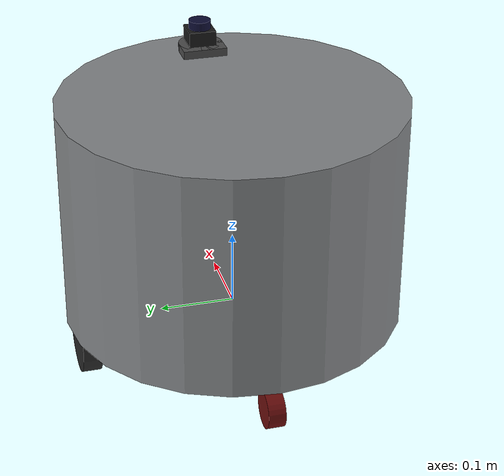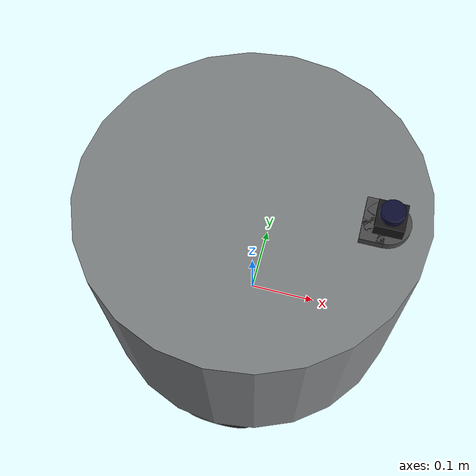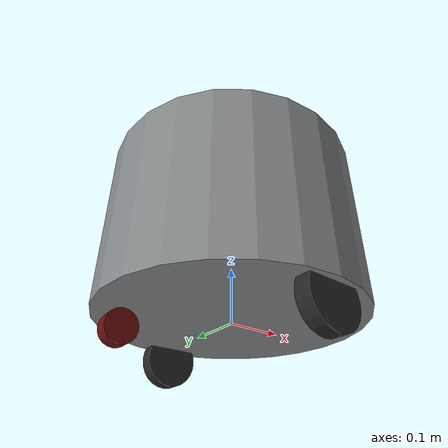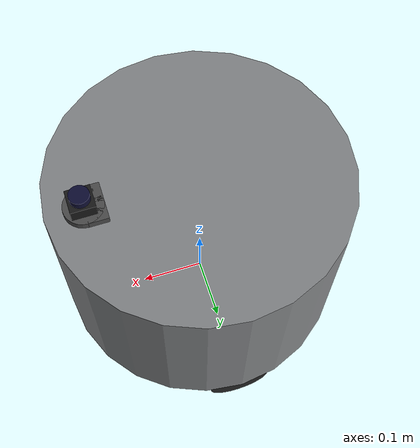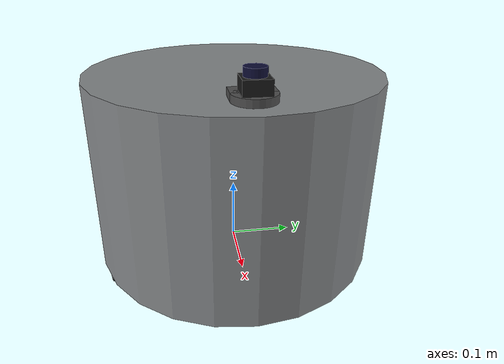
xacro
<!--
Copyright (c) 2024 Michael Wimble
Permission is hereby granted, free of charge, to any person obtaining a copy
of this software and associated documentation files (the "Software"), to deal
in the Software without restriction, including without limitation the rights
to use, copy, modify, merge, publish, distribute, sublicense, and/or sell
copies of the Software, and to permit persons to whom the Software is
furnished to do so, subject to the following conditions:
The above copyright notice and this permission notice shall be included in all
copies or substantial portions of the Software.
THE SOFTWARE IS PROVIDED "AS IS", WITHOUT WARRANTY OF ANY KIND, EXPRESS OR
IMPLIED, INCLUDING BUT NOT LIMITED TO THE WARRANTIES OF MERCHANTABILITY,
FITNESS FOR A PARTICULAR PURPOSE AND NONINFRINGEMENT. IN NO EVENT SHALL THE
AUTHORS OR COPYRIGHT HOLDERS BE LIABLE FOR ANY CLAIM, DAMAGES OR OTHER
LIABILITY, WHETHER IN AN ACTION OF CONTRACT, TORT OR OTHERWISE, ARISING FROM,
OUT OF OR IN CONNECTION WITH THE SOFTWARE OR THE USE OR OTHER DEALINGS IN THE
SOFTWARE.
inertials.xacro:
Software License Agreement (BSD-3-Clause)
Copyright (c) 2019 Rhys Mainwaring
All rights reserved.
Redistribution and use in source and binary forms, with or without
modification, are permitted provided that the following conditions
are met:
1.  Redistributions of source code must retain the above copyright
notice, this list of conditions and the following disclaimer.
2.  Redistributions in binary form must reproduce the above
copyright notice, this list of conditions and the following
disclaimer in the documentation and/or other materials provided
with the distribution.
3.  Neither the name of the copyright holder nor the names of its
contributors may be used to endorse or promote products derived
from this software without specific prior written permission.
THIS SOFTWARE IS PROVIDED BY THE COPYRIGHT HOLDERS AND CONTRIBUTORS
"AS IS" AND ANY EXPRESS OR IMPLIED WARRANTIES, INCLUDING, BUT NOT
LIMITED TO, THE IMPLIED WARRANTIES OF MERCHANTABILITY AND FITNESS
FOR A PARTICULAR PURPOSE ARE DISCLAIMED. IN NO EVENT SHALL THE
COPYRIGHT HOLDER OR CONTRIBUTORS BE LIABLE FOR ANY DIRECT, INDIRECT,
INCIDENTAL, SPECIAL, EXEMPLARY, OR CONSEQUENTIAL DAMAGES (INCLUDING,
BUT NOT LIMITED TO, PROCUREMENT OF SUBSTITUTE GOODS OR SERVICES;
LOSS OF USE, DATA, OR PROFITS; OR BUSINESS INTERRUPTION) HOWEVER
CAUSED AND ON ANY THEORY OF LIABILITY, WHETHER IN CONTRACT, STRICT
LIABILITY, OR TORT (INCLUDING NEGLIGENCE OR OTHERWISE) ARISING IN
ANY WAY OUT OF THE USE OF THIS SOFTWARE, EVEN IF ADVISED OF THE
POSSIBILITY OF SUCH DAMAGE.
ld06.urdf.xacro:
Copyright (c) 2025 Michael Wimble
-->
<?xml version="1.0"?>
<robot xmlns:xacro="http://ros.org/wiki/xacro" name="base">
  <xacro:include filename="$(find description)/urdf/properties.urdf.xacro" />
  <xacro:include filename="$(find description)/urdf/caster.urdf.xacro" />
  <xacro:include filename="$(find description)/urdf/depthai_macro.urdf.xacro" />
  <xacro:include filename="$(find description)/urdf/inertials.xacro" />
  <xacro:include filename="$(find description)/urdf/ld06.urdf.xacro" />
  <xacro:include filename="$(find description)/urdf/material.urdf.xacro" />
  <xacro:include filename="$(find description)/urdf/gazebo.urdf.xacro" />
  <xacro:include filename="$(find description)/urdf/wheel.urdf.xacro" />
  <xacro:include filename="$(find description)/urdf/oakd.urdf.xacro" />

  <xacro:arg name="use_ros2_control" default="true" />
  <xacro:arg name="sim_mode" default="false" />

  <xacro:if value="$(arg use_ros2_control)">
    <xacro:include filename="ros2_control.xacro" />
  </xacro:if>
  <xacro:unless value="$(arg use_ros2_control)">
    <xacro:include filename="gazebo_control.xacro" />
  </xacro:unless>

  <link name="base_link" />
  <joint name="chassis_joint" type="fixed">
    <origin xyz="0 0 0" rpy="0 0 0" />
    <child link="chassis" />
    <parent link="base_link" />
  </joint>

  <link name="chassis">
    <collision>
      <geometry>
        <cylinder radius="${body_radius}" length="${body_height}" />
      </geometry>
      <origin rpy="0 0 0" xyz="0 0 ${(body_height/2)}" />
    </collision>
    <visual>
      <geometry>
        <cylinder radius="${body_radius}" length="${body_height}" />
      </geometry>
      <material name="aluminum_frame" />
      <origin rpy="0 0 0" xyz="0 0 ${(body_height/2)}" />
    </visual>
    <xacro:solid_cylinder_inertial rpy="0 0 0" xyz="-0.05 0 0.05" mass_kg="${mass}"
      radius="${body_radius}" length="${body_height}" />
  </link>
  <gazebo reference="chassis">
    <material>
      Gazebo/Grey
    </material>
  </gazebo>

  <link name="base_footprint" />

  <joint name="base_footprint_joint" type="fixed">
    <origin xyz="0 0 -${base_to_floor_z_offset}" rpy="0 0 0" />
    <child link="base_footprint" />
    <parent link="base_link" />
  </joint>

  <xacro:wheel
    side="left"
    radius="${wheel_radius}"
    width="${wheel_width}"
    pos_x="${wheel_pos_x}"
    pos_y="${wheel_pos_y}"
    pos_z="${wheel_pos_z}"
    mass_kg="${wheel_mass_kg}"
  />

  <xacro:wheel
    side="right"
    radius="${wheel_radius}"
    width="${wheel_width}"
    pos_x="${wheel_pos_x}"
    pos_y="${-wheel_pos_y}"
    pos_z="${wheel_pos_z}"
    mass_kg="${wheel_mass_kg}"
  />
  <xacro:caster_wheel
    mass_kg="0.4"
  />

  <xacro:ld06 lidar_prefix="top_lidar">
    <origin xyz="0.155 0 0.300" rpy="0 0 -${M_PI / 2}" />
  </xacro:ld06>

  <xacro:diff_drive_controller
    wheel_separation="${wheel_pos_y * 2}"
    wheel_radius="${wheel_radius}"
  />

</robot>

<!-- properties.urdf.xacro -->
<robot xmlns:xacro="http://ros.org/wiki/xacro">
  <xacro:property name="M_PI" value="3.14159" />

  <xacro:property name="body_height" value="0.300" />
  <xacro:property name="body_radius" value="0.2286" />
  <xacro:property name="mass" value="22" />

  <xacro:property name="gear_box_center_height" value="0.015" />
  <xacro:property name="wheel_radius" value="0.05" />
  <xacro:property name="wheel_center_offset" value="0.025" />
  <xacro:property name="wheel_mass_kg" value=".1" />
  <xacro:property name="wheel_pos_x" value="0.0" />
  <xacro:property name="wheel_pos_y" value="${(body_radius)-wheel_center_offset}" />
  <xacro:property name="wheel_pos_z" value="-${gear_box_center_height + 0.007}" />
  <xacro:property name="wheel_width" value="0.0254" />

  <xacro:property name="base_to_floor_z_offset" value="${wheel_radius + gear_box_center_height + 0.007}" />

  <xacro:property name="wheel_offset_from_front" value="${body_radius}" />

  <material name="black">
    <color rgba="0 0 0 1" />
  </material>

  <material name="blackish">
    <color rgba="0.1 0.1 0.1 1" />
  </material>

</robot>

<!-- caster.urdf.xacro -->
<robot xmlns:xacro="http://ros.org/wiki/xacro">
  <xacro:macro name="caster_wheel" params="mass_kg">
    <xacro:property name="caster_radius" value="0.025" />
    <xacro:property name="caster_width" value="0.023" />
    <xacro:property name="caster_offset" value="0.035" />
    <xacro:property name="caster_wheel_x" value="${-(body_radius-caster_offset)}" />

    <link name="caster_wheel_link">
      <visual>
        <origin xyz="0 0 0" rpy="${pi/2} 0 0" />
        <geometry>
          <cylinder radius="${caster_radius}" length="${caster_width}" />
        </geometry>
        <material name="red">
          <color rgba="0.416 0.051 0.047 1.0" />
        </material>
      </visual>

      <collision>
        <origin xyz="0 0 0" rpy="${pi/2} 0 0" />
        <geometry>
          <cylinder radius="${caster_radius}" length="${caster_width}" />
        </geometry>
      </collision>

      <xacro:solid_cylinder_inertial rpy="${pi/2} 0 0" xyz="0 0 0" mass_kg="${mass_kg}"
        radius="${body_radius}" length="${body_height}" />

    </link>

    <gazebo reference="caster_wheel_link">
      <mu1>0.01</mu1>
      <mu2>0.01</mu2>
      <material>Gazebo/Red</material>
    </gazebo>

    <joint name="caster_wheel_joint" type="fixed">
      <parent link="chassis" />
      <child link="caster_wheel_link" />
      <origin
        xyz="${caster_wheel_x} 0 -${wheel_radius + gear_box_center_height - caster_radius + 0.007}"
        rpy="0 0 0" />
    </joint>
  </xacro:macro>

</robot>

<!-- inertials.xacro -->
<!--  xacro macros for intertials.
    Define xacro macros for math constants and inertials:

    - solid cuboid
    - solid cylinder
    - null (a placeholder inertial for logical link elements)
 -->
<robot name="sigyn" xmlns:xacro="http://ros.org/wiki/xacro">

    <!-- Math constants -->
    <xacro:property name="math_pi"        value="3.141592653589793" />
    <xacro:property name="math_pi_over_2" value="1.5707963267948966" />
    <xacro:property name="math_pi_over_4" value="0.785398163397448" />

    <!-- Inertial for solid cuboid with dimensions x y z  -->
    <xacro:macro name="solid_cuboid_inertial" params="rpy xyz mass_kg x y z">
        <inertial>
            <origin rpy="${rpy}" xyz="${xyz}"/>
            <mass value="${mass_kg}" />
            <inertia
                ixx="${mass_kg * (y * y + z * z) / 12.0}" ixy="0.0" ixz="0.0"
                iyy="${mass_kg * (x * x + z * z) / 12.0}" iyz="0.0"
                izz="${mass_kg * (x * x + y * y) / 12.0}" />
        </inertial>
    </xacro:macro>

    <!-- Inertial for solid cylinder with radius and length aligned to z-axis  -->
    <xacro:macro name="solid_cylinder_inertial" params="rpy xyz mass_kg radius length">
        <inertial>
            <origin rpy="${rpy}" xyz="${xyz}"/>
            <mass value="${mass_kg}" />
            <inertia
                ixx="${mass_kg * (3.0 * radius * radius + length * length) / 12.0}" ixy="0.0" ixz="0.0"
                iyy="${mass_kg * (3.0 * radius * radius + length * length) / 12.0}" iyz="0.0"
                izz="${mass_kg * (radius * radius) / 2.0}" />
        </inertial>
    </xacro:macro>

    <!-- A null inertial - used in placeholder links to esure the model will work in Gazebo -->
    <xacro:macro name="null_inertial">
        <inertial>
            <mass value="0.001"/>
            <inertia ixx="0.001" ixy="0" ixz="0" iyy="0.001" iyz="0" izz="0.001"/>
        </inertial>
    </xacro:macro>
</robot>

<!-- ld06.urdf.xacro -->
<robot xmlns:xacro="http://ros.org/wiki/xacro" name="ld06">

  <xacro:macro name="ld06" params="lidar_prefix topic_name:=scan *joint_pose">
    <material name="ld06_${lidar_prefix}_grey">
      <color rgba="0.3 0.3 0.3 1" />
    </material>

    <material name="ld06_${lidar_prefix}_blackish">
      <color rgba="0.1 0.1 0.1 1" />
    </material>

    <material name="ld06_${lidar_prefix}_cylinder">
      <color rgba="0.05 0.05 0.2 1" />
    </material>

    <xacro:property name="ld06_base_box_height" value="0.011" />
    <xacro:property name="ld06_base_box_width" value="0.060" />
    <xacro:property name="ld06_box_width" value="0.037" />
    <xacro:property name="ld06_box_height" value="0.020" />
    <xacro:property name="ld06_cylinder_height" value="0.012" />
    <xacro:property name="ld06_cylinder_radius" value="0.015" />

    <joint name="base_to_lidar_frame_${lidar_prefix}" type="fixed">
      <parent link="base_link" />
      <child link="lidar_frame_${lidar_prefix}" />
      <xacro:insert_block name="joint_pose" />
    </joint>

    <link name="lidar_frame_${lidar_prefix}">
      <collision>
        <origin xyz="0 0 ${ld06_base_box_height / 2}" rpy="0 0 0" />
        <geometry>
          <box size="${ld06_base_box_width} ${ld06_base_box_width / 2} ${ld06_base_box_height}" />
        </geometry>
      </collision>
      <visual>
        <origin xyz="0 0 ${ld06_base_box_height / 2}" rpy="0 0 0" />
        <geometry>
          <box size="${ld06_base_box_width} ${ld06_base_box_width / 2} ${ld06_base_box_height}" />
        </geometry>
        <material name="ld06_${lidar_prefix}_grey" />
      </visual>

      <visual>
        <origin xyz="0 0.017 ${ld06_base_box_height + (ld06_box_height / 2)}" rpy="0 0 0" />
        <geometry>
          <box size="${ld06_box_width} ${ld06_box_width} ${ld06_box_height}" />
        </geometry>
        <material name="ld06_${lidar_prefix}_blackish" />
      </visual>

      <visual>
        <origin xyz="0 0.017 ${(ld06_base_box_height + ld06_box_height) +(ld06_cylinder_height / 2)}" rpy="0 0 0" />
        <geometry>
          <cylinder radius="${ld06_cylinder_radius}" length="${ld06_cylinder_height}" />
        </geometry>
        <material name="ld06_${lidar_prefix}_cylinder" />
      </visual>

      <visual>
        <geometry>
          <cylinder radius="${ld06_base_box_width / 2}" length="${ld06_base_box_height}" />
        </geometry>
        <material name="ld06_${lidar_prefix}_grey" />
        <origin xyz="0 ${ld06_base_box_width / 4} ${(ld06_base_box_height / 2)}" rpy="0 0 0" />
      </visual>

      <xacro:solid_cuboid_inertial rpy="0 0 0" xyz="0 0 0" mass_kg="0.001" x="${ld06_base_box_width}" y="${ld06_base_box_width / 2}" z="${ld06_base_box_height}" />
    </link>

    <link name="lidar_beam_${lidar_prefix}"></link>
    <joint name="laser_beam_${lidar_prefix}_joint" type="fixed">
      <parent link="lidar_frame_${lidar_prefix}" />
      <child link="lidar_beam_${lidar_prefix}" />
      <origin xyz="0 0 0.04" rpy="0 0 0" />
    </joint>

    <gazebo reference="lidar_frame_${lidar_prefix}">
      <material>Gazebo/Black</material>

      <sensor name="lidar_frame_${lidar_prefix}" type="gpu_lidar">
        <visualize>true</visualize>
        <update_rate>10</update_rate>
        <lidar>
          <scan>
            <horizontal>
              <samples>450</samples>
              <resolution>1</resolution>
              <min_angle>-3.14159</min_angle>
              <max_angle>3.14159</max_angle>
            </horizontal>
            <vertical>
              <samples>1</samples>
              <resolution>1</resolution>
              <min_angle>0</min_angle>
              <max_angle>0</max_angle>
            </vertical>
          </scan>
          <range>
            <min>0.3</min>
            <max>12.0</max>
          </range>
          <noise>
            <type>gaussian</type>
            <mean>0.0</mean>
            <stddev>0.01</stddev>
          </noise>
          <!-- Add ray filtering to handle self-collisions -->
          <ray>
            <scan>
              <horizontal>
                <samples>450</samples>
                <resolution>1</resolution>
                <min_angle>-3.14159</min_angle>
                <max_angle>3.14159</max_angle>
              </horizontal>
            </scan>
            <range>
              <min>0.3</min>
              <max>12.0</max>
            </range>
          </ray>
        </lidar>
        <topic>${topic_name}</topic>
        <gz_frame_id>lidar_beam_${lidar_prefix}</gz_frame_id>
      </sensor>

      <!-- Use correct Gazebo Garden/Harmonic plugin -->
      <plugin name="gazebo_ros_laser_controller" filename="libgazebo_ros_gpu_laser.so">
        <ros>
          <namespace></namespace>
          <remapping>~/out:=${topic_name}</remapping>
        </ros>
        <output_type>sensor_msgs/LaserScan</output_type>
        <frame_name>lidar_beam_${lidar_prefix}</frame_name>
      </plugin>
    </gazebo>
  </xacro:macro>

</robot>

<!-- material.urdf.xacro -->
<robot xmlns:xacro="http://ros.org/wiki/xacro" name="material">

    <material name="aluminum_frame">
        <color rgba="0.516 0.527 0.535 1" />
    </material>

    <material name="caster_wheel_material">
        <color rgba="0.9 0.1 0.1 1" />
    </material>

    <material name="t265_material">
        <color rgba="0.80 0.40 0.60 1" />
    </material>

    <material name="wheel_material">
        <color rgba="0.15 0.15 0.15 1" />
    </material>

</robot>

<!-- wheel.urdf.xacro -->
<robot xmlns:xacro="http://ros.org/wiki/xacro">
  <xacro:macro name="wheel" params="side radius width pos_x pos_y pos_z mass_kg">
    <link name="${side}_wheel_link">
      <visual>
        <origin xyz="0 0 0" rpy="${pi/2} 0 0" />
        <geometry>
          <cylinder radius="${radius}" length="${width}" />
        </geometry>
        <material name="wheel_material" />
      </visual>
      <collision>
        <origin xyz="0 0 0" rpy="${pi/2} 0 0" />
        <geometry>
          <cylinder radius="${radius}" length="${width}" />
        </geometry>
      </collision>
      <xacro:solid_cylinder_inertial rpy="${pi/2} 0 0" xyz="0 0 0" mass_kg="${mass_kg}"
        radius="${body_radius}" length="${body_height}" />
    </link>
    <gazebo reference="${side}_wheel_link">
      <visual>
        <material>
          <ambient>0.1764 0.4588 0.8509 1.0</ambient>
          <diffuse>0.1764 0.4588 0.8509 1.0</diffuse>
          <specular>0.1764 0.4588 0.8509 1.0</specular>
          <emissive>0.0 0.0 0.0 0.0</emissive>
        </material>
      </visual>
    </gazebo>
    <joint name="${side}_wheel_joint" type="continuous">
      <axis xyz="0 1 0" />
      <parent link="base_link" />
      <child link="${side}_wheel_link" />
      <origin xyz="${pos_x} ${pos_y} ${pos_z}" rpy="0 0 0" />
    </joint>
  </xacro:macro>

</robot>
